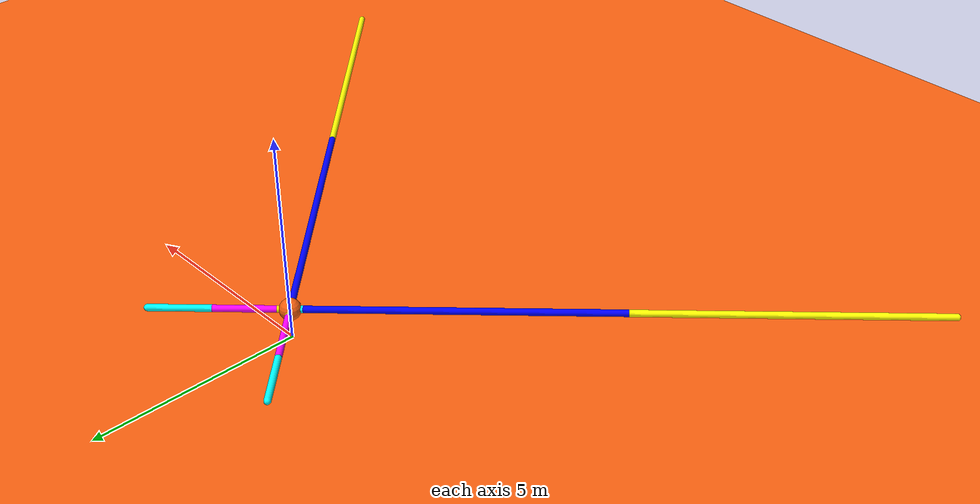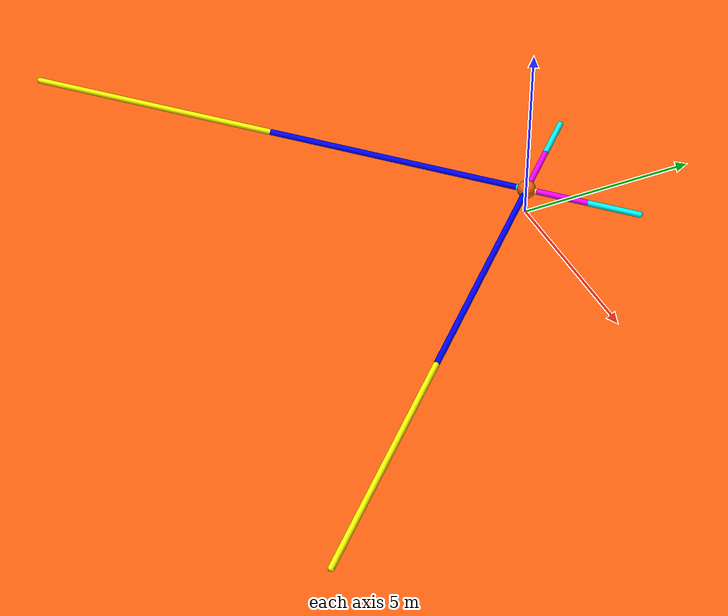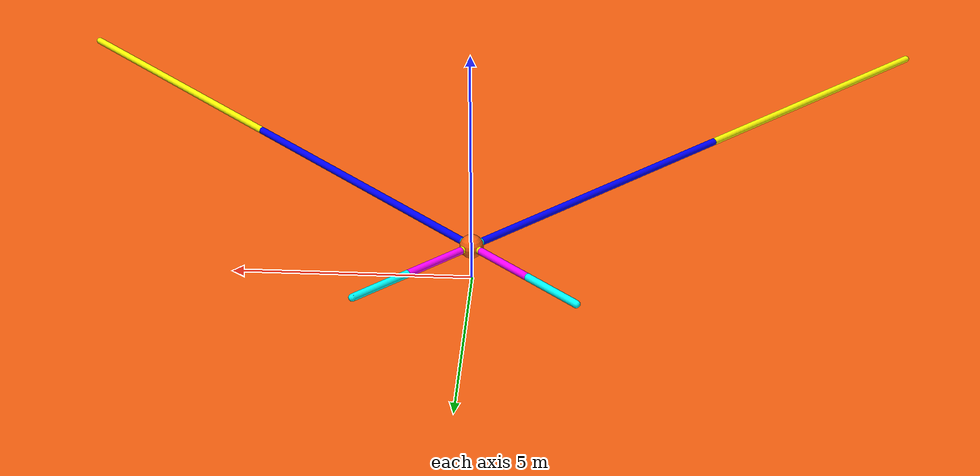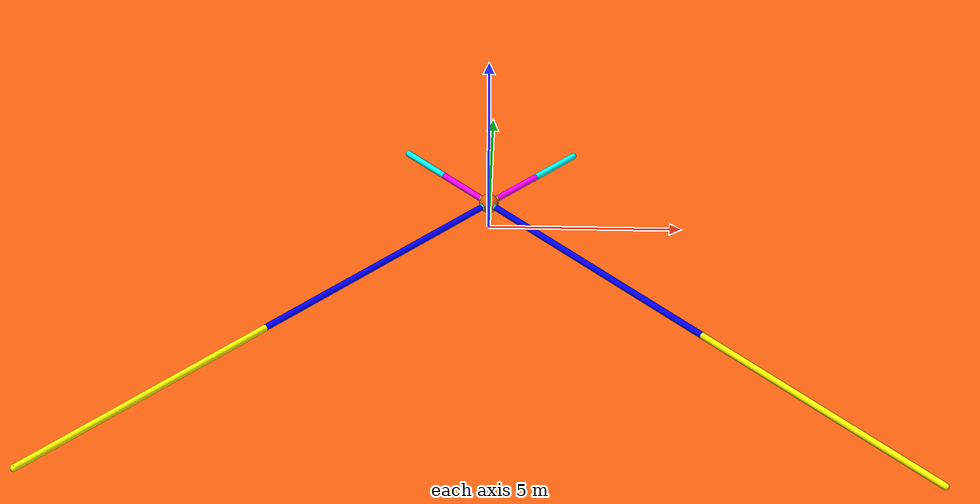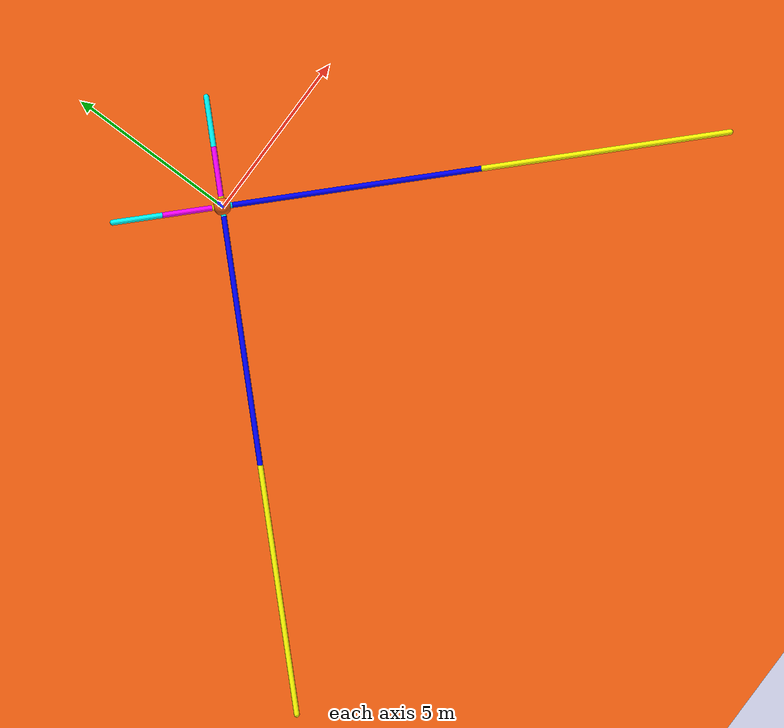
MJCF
<?xml version='1.0' encoding='utf-8'?>
<mujoco model="ant">
  <custom>
    <numeric data="0.0 0.0 0.55 1.0 0.0 0.0 0.0 0.0 1.0 0.0 -1.0 0.0 -1.0 0.0 1.0" name="init_qpos" />
  </custom>

  <default>
    <joint armature="0.01" damping="0.1" limited="true" />
    <geom condim="3" density="5.0" friction="1.5 0.1 0.1" margin="0.01" rgba="0.97 0.38 0.06 1" />
  </default>

  <compiler inertiafromgeom="true" angle="degree" />

  <option timestep="0.016" iterations="50" tolerance="1e-10" solver="Newton" jacobian="dense" cone="pyramidal" />

  <size nconmax="50" njmax="200" nstack="10000" />
  <visual>
      <map force="0.1" zfar="30" />
      <rgba haze="0.15 0.25 0.35 1" />
      <quality shadowsize="2048" />
      <global offwidth="800" offheight="800" />
  </visual>

  <asset>
      <texture type="skybox" builtin="gradient" rgb1="0.3 0.5 0.7" rgb2="0 0 0" width="512" height="512" />
      <texture name="texplane" type="2d" builtin="checker" rgb1=".2 .3 .4" rgb2=".1 0.15 0.2" width="512" height="512" mark="cross" markrgb=".8 .8 .8" />
      <texture name="texgeom" type="cube" builtin="flat" mark="cross" width="127" height="1278" rgb1="0.8 0.6 0.4" rgb2="0.8 0.6 0.4" markrgb="1 1 1" random="0.01" />

      <material name="matplane" reflectance="0.3" texture="texplane" texrepeat="1 1" texuniform="true" />
      <material name="matgeom" texture="texgeom" texuniform="true" rgba="0.8 0.6 .4 1" />
  </asset>

  <worldbody>
    <geom name="floor" pos="0 0 0" size="0 0 .25" type="plane" material="matplane" condim="3" />

    <light directional="false" diffuse=".2 .2 .2" specular="0 0 0" pos="0 0 5" dir="0 0 -1" castshadow="false" />
    <light mode="targetbodycom" target="torso" directional="false" diffuse=".8 .8 .8" specular="0.3 0.3 0.3" pos="0 0 4.0" dir="0 0 -1" />

    <body name="torso" pos="0 0 0.75">
      <freejoint name="root" />
      <geom name="torso_geom" pos="0 0 0" size="0.25" type="sphere" />
      <geom fromto="0.0 0.0 0.0 0.2 0.2 0.0" name="aux_1_geom" size="0.08" type="capsule" rgba="1 1 0 1" />
      <geom fromto="0.0 0.0 0.0 -0.2 0.2 0.0" name="aux_2_geom" size="0.08" type="capsule" rgba="1 1 0 1" />
      <geom fromto="0.0 0.0 0.0 -0.2 -0.2 0.0" name="aux_3_geom" size="0.08" type="capsule" rgba="0 1 1 1" />
      <geom fromto="0.0 0.0 0.0 0.2 -0.2 0.0" name="aux_4_geom" size="0.08" type="capsule" rgba="0 1 1 1" />

      <body name="front_left_leg" pos="0.2 0.2 0">
        <joint axis="0 0 1" name="hip_1" pos="0.0 0.0 0.0" range="-40 40" type="hinge" />
        <joint axis="-1 1 0" name="hip_1_pitch" pos="0.0 0.0 0.0" range="-30 30" type="hinge" />
        <geom fromto="0.0 0.0 0.0 1 1 0.0" name="front_left_leg_geom" size="0.08" type="capsule" rgba="1 0 1 1" />
        <body pos="1 1 0.0" name="front_left_ankle_body">
          <joint axis="-1 1 0" name="ankle_1" pos="0.0 0.0 0.0" range="30 100" type="hinge" />
          <geom fromto="0.0 0.0 0.0 1 1 0.0" name="front_left_ankle_geom" size="0.08" type="capsule" rgba="0 1 1 1" />
        </body>
      </body>
      <body name="front_right_leg" pos="-0.2 0.2 0">
        <joint axis="0 0 1" name="hip_2" pos="0.0 0.0 0.0" range="-40 40" type="hinge" />
        <joint axis="1 1 0" name="hip_2_pitch" pos="0.0 0.0 0.0" range="-30 30" type="hinge" />
        <geom fromto="0.0 0.0 0.0 -1 1 0.0" name="front_right_leg_geom" size="0.08" type="capsule" rgba="1 0 1 1" />
        <body pos="-1 1 0.0" name="front_right_ankle_body">
          <joint axis="1 1 0" name="ankle_2" pos="0.0 0.0 0.0" range="-100 -30" type="hinge" />
          <geom fromto="0.0 0.0 0.0 -1 1 0.0" name="front_right_ankle_geom" size="0.08" type="capsule" rgba="0 1 1 1" />
        </body>
      </body>
      <body name="back_left_leg" pos="-0.2 -0.2 0">
        <joint axis="0 0 1" name="hip_3" pos="0.0 0.0 0.0" range="-40 40" type="hinge" />
        <joint axis="-1 1 0" name="hip_3_pitch" pos="0.0 0.0 0.0" range="-30 30" type="hinge" />
        <geom fromto="0.0 0.0 0.0 -5 -5 0.0" name="back_left_leg_geom" size="0.08" type="capsule" rgba="0 0 1 1" />
        <body pos="-5 -5 0.0" name="back_left_ankle_body">
          <joint axis="-1 1 0" name="ankle_3" pos="0.0 0.0 0.0" range="-100 -30" type="hinge" />
          <geom fromto="0.0 0.0 0.0 -5 -5 0.0" name="back_left_ankle_geom" size="0.08" type="capsule" rgba="1 1 0 1" />
        </body>
      </body>
      <body name="back_right_leg" pos="0.2 -0.2 0">
        <joint axis="0 0 1" name="hip_4" pos="0.0 0.0 0.0" range="-40 40" type="hinge" />
        <joint axis="1 1 0" name="hip_4_pitch" pos="0.0 0.0 0.0" range="-30 30" type="hinge" />
        <geom fromto="0.0 0.0 0.0 5 -5 0.0" name="back_right_leg_geom" size="0.08" type="capsule" rgba="0 0 1 1" />
        <body pos="5 -5 0.0" name="back_right_ankle_body">
          <joint axis="1 1 0" name="ankle_4" pos="0.0 0.0 0.0" range="30 100" type="hinge" />
          <geom fromto="0.0 0.0 0.0 5 -5 0.0" name="back_right_ankle_geom" size="0.08" type="capsule" rgba="1 1 0 1" />
        </body>
      </body>
    </body>
  </worldbody>

  <actuator>
    <motor ctrllimited="true" ctrlrange="-1.0 1.0" joint="hip_4" gear="15" />
    <motor ctrllimited="true" ctrlrange="-1.0 1.0" joint="hip_4_pitch" gear="15" />
    <motor ctrllimited="true" ctrlrange="-1.0 1.0" joint="ankle_4" gear="15" />
    <motor ctrllimited="true" ctrlrange="-1.0 1.0" joint="hip_1" gear="15" />
    <motor ctrllimited="true" ctrlrange="-1.0 1.0" joint="hip_1_pitch" gear="15" />
    <motor ctrllimited="true" ctrlrange="-1.0 1.0" joint="ankle_1" gear="15" />
    <motor ctrllimited="true" ctrlrange="-1.0 1.0" joint="hip_2" gear="15" />
    <motor ctrllimited="true" ctrlrange="-1.0 1.0" joint="hip_2_pitch" gear="15" />
    <motor ctrllimited="true" ctrlrange="-1.0 1.0" joint="ankle_2" gear="15" />
    <motor ctrllimited="true" ctrlrange="-1.0 1.0" joint="hip_3" gear="15" />
    <motor ctrllimited="true" ctrlrange="-1.0 1.0" joint="hip_3_pitch" gear="15" />
    <motor ctrllimited="true" ctrlrange="-1.0 1.0" joint="ankle_3" gear="15" />
  </actuator>
</mujoco>
